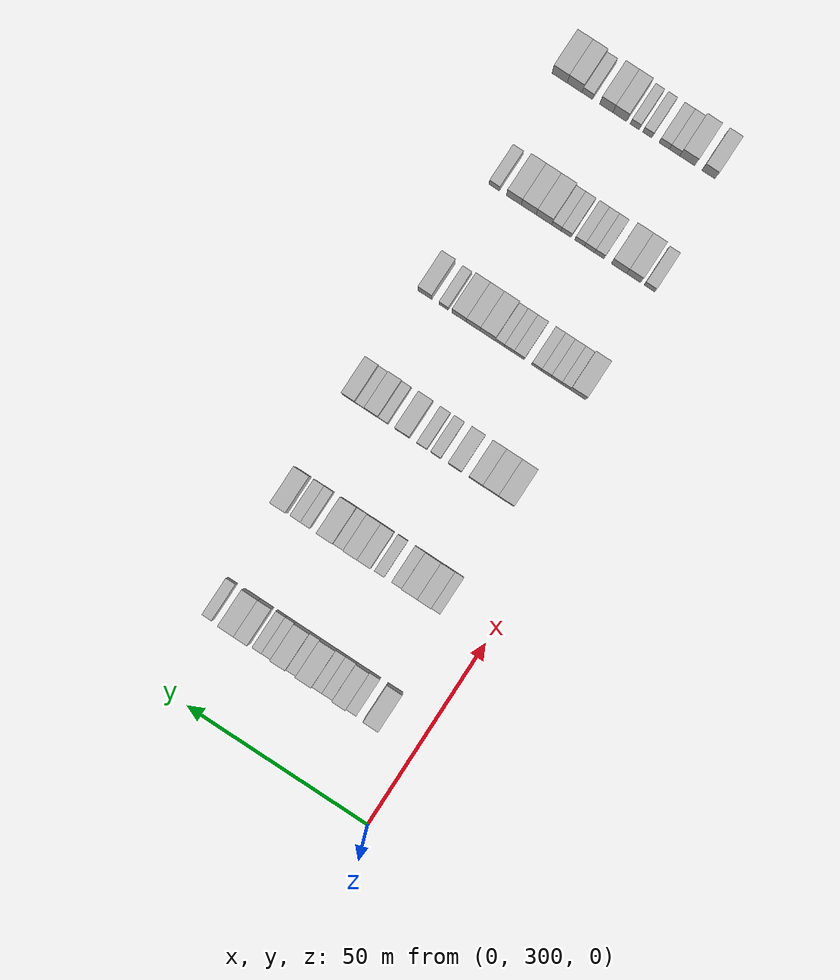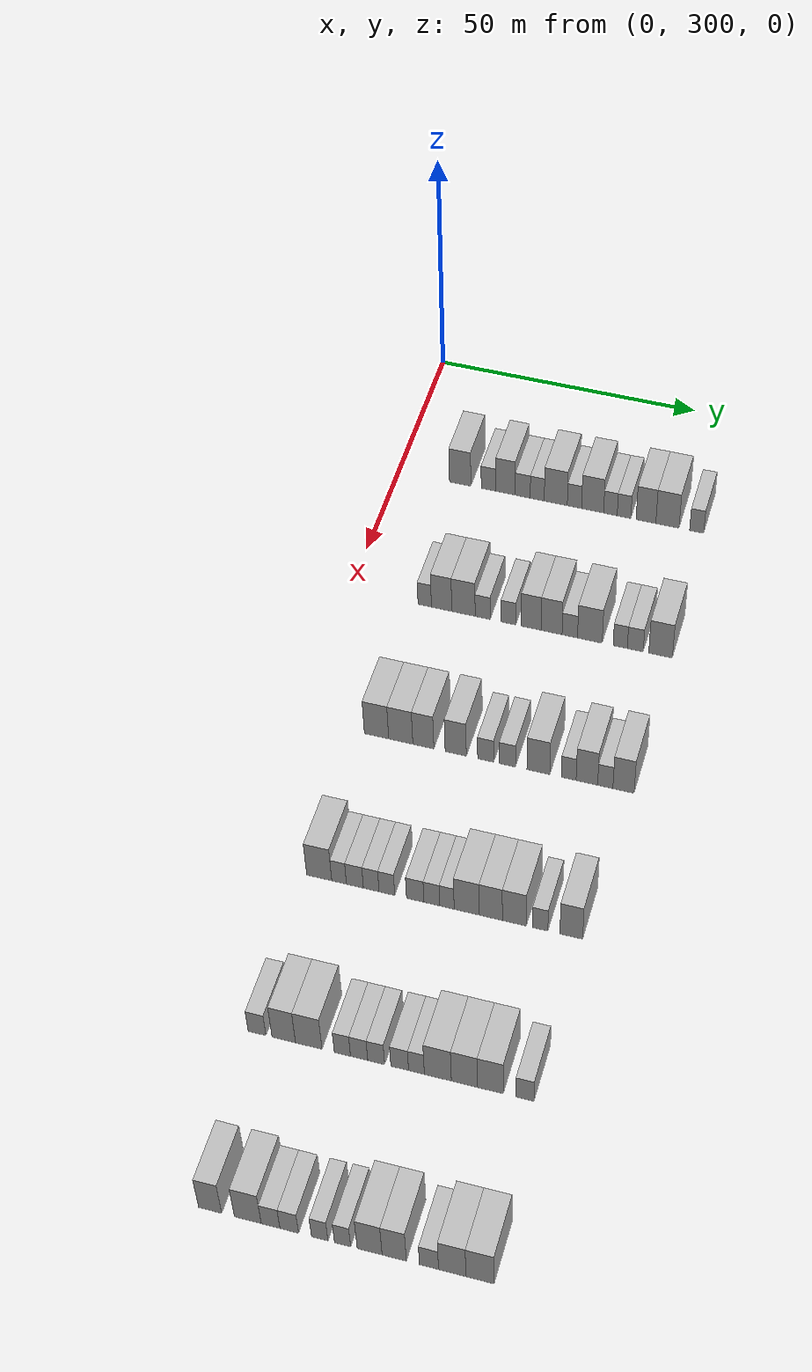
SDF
<sdf version="1.6">
 <world name="default">
  <model name="building_190">
   <static>1</static>
   <pose>25.0000 311.9257 0 0.000000 0.000000 0.000000</pose>
   <link name="link">
    <pose>0 0 4.50 0 0 0</pose>
    <collision name="collision"><geometry><box><size>10.0000 4.1539 9.0000</size></box></geometry></collision>
    <visual name="visual">
     <cast_shadows>0</cast_shadows>
     <geometry><box><size>10.0000 4.1539 9.0000</size></box></geometry>
     <material>
      <script>
       <uri>model://HANNAS_wall/materials/scripts</uri>
       <uri>model://HANNAS_wall/materials/textures</uri>
       <name>vrc/HANNAS_wall</name>
      </script>
     </material>
    </visual>
   </link>
  </model>
  <model name="building_191">
   <static>1</static>
   <pose>25.0000 317.4228 0 0.000000 0.000000 0.000000</pose>
   <link name="link">
    <pose>0 0 3.00 0 0 0</pose>
    <collision name="collision"><geometry><box><size>10.0000 2.8403 6.0000</size></box></geometry></collision>
    <visual name="visual">
     <cast_shadows>0</cast_shadows>
     <geometry><box><size>10.0000 2.8403 6.0000</size></box></geometry>
     <material>
      <script>
       <uri>model://HANNAS_wall/materials/scripts</uri>
       <uri>model://HANNAS_wall/materials/textures</uri>
       <name>vrc/HANNAS_wall</name>
      </script>
     </material>
    </visual>
   </link>
  </model>
  <model name="building_192">
   <static>1</static>
   <pose>25.0000 320.6997 0 0.000000 0.000000 0.000000</pose>
   <link name="link">
    <pose>0 0 4.50 0 0 0</pose>
    <collision name="collision"><geometry><box><size>10.0000 3.7133 9.0000</size></box></geometry></collision>
    <visual name="visual">
     <cast_shadows>0</cast_shadows>
     <geometry><box><size>10.0000 3.7133 9.0000</size></box></geometry>
     <material>
      <script>
       <uri>model://HANNAS_wall/materials/scripts</uri>
       <uri>model://HANNAS_wall/materials/textures</uri>
       <name>vrc/HANNAS_wall</name>
      </script>
     </material>
    </visual>
   </link>
  </model>
  <model name="building_193">
   <static>1</static>
   <pose>25.0000 323.9984 0 0.000000 0.000000 0.000000</pose>
   <link name="link">
    <pose>0 0 3.00 0 0 0</pose>
    <collision name="collision"><geometry><box><size>10.0000 2.8842 6.0000</size></box></geometry></collision>
    <visual name="visual">
     <cast_shadows>0</cast_shadows>
     <geometry><box><size>10.0000 2.8842 6.0000</size></box></geometry>
     <material>
      <script>
       <uri>model://HANNAS_wall/materials/scripts</uri>
       <uri>model://HANNAS_wall/materials/textures</uri>
       <name>vrc/HANNAS_wall</name>
      </script>
     </material>
    </visual>
   </link>
  </model>
  <model name="building_194">
   <static>1</static>
   <pose>25.0000 326.7811 0 0.000000 0.000000 0.000000</pose>
   <link name="link">
    <pose>0 0 3.00 0 0 0</pose>
    <collision name="collision"><geometry><box><size>10.0000 2.6811 6.0000</size></box></geometry></collision>
    <visual name="visual">
     <cast_shadows>0</cast_shadows>
     <geometry><box><size>10.0000 2.6811 6.0000</size></box></geometry>
     <material>
      <script>
       <uri>model://HANNAS_wall/materials/scripts</uri>
       <uri>model://HANNAS_wall/materials/textures</uri>
       <name>vrc/HANNAS_wall</name>
      </script>
     </material>
    </visual>
   </link>
  </model>
  <model name="building_195">
   <static>1</static>
   <pose>25.0000 330.3215 0 0.000000 0.000000 0.000000</pose>
   <link name="link">
    <pose>0 0 4.50 0 0 0</pose>
    <collision name="collision"><geometry><box><size>10.0000 4.3998 9.0000</size></box></geometry></collision>
    <visual name="visual">
     <cast_shadows>0</cast_shadows>
     <geometry><box><size>10.0000 4.3998 9.0000</size></box></geometry>
     <material>
      <script>
       <uri>model://HANNAS_wall/materials/scripts</uri>
       <uri>model://HANNAS_wall/materials/textures</uri>
       <name>vrc/HANNAS_wall</name>
      </script>
     </material>
    </visual>
   </link>
  </model>
  <model name="building_196">
   <static>1</static>
   <pose>25.0000 333.8808 0 0.000000 0.000000 0.000000</pose>
   <link name="link">
    <pose>0 0 3.00 0 0 0</pose>
    <collision name="collision"><geometry><box><size>10.0000 2.7188 6.0000</size></box></geometry></collision>
    <visual name="visual">
     <cast_shadows>0</cast_shadows>
     <geometry><box><size>10.0000 2.7188 6.0000</size></box></geometry>
     <material>
      <script>
       <uri>model://HANNAS_wall/materials/scripts</uri>
       <uri>model://HANNAS_wall/materials/textures</uri>
       <name>vrc/HANNAS_wall</name>
      </script>
     </material>
    </visual>
   </link>
  </model>
  <model name="building_197">
   <static>1</static>
   <pose>25.0000 337.3412 0 0.000000 0.000000 0.000000</pose>
   <link name="link">
    <pose>0 0 4.50 0 0 0</pose>
    <collision name="collision"><geometry><box><size>10.0000 4.2018 9.0000</size></box></geometry></collision>
    <visual name="visual">
     <cast_shadows>0</cast_shadows>
     <geometry><box><size>10.0000 4.2018 9.0000</size></box></geometry>
     <material>
      <script>
       <uri>model://HANNAS_wall/materials/scripts</uri>
       <uri>model://HANNAS_wall/materials/textures</uri>
       <name>vrc/HANNAS_wall</name>
      </script>
     </material>
    </visual>
   </link>
  </model>
  <model name="building_198">
   <static>1</static>
   <pose>25.0000 340.7309 0 0.000000 0.000000 0.000000</pose>
   <link name="link">
    <pose>0 0 3.00 0 0 0</pose>
    <collision name="collision"><geometry><box><size>10.0000 2.5776 6.0000</size></box></geometry></collision>
    <visual name="visual">
     <cast_shadows>0</cast_shadows>
     <geometry><box><size>10.0000 2.5776 6.0000</size></box></geometry>
     <material>
      <script>
       <uri>model://HANNAS_wall/materials/scripts</uri>
       <uri>model://HANNAS_wall/materials/textures</uri>
       <name>vrc/HANNAS_wall</name>
      </script>
     </material>
    </visual>
   </link>
  </model>
  <model name="building_199">
   <static>1</static>
   <pose>25.0000 343.3075 0 0.000000 0.000000 0.000000</pose>
   <link name="link">
    <pose>0 0 3.00 0 0 0</pose>
    <collision name="collision"><geometry><box><size>10.0000 2.5756 6.0000</size></box></geometry></collision>
    <visual name="visual">
     <cast_shadows>0</cast_shadows>
     <geometry><box><size>10.0000 2.5756 6.0000</size></box></geometry>
     <material>
      <script>
       <uri>model://HANNAS_wall/materials/scripts</uri>
       <uri>model://HANNAS_wall/materials/textures</uri>
       <name>vrc/HANNAS_wall</name>
      </script>
     </material>
    </visual>
   </link>
  </model>
  <model name="building_200">
   <static>1</static>
   <pose>25.0000 347.4559 0 0.000000 0.000000 0.000000</pose>
   <link name="link">
    <pose>0 0 4.50 0 0 0</pose>
    <collision name="collision"><geometry><box><size>10.0000 3.7213 9.0000</size></box></geometry></collision>
    <visual name="visual">
     <cast_shadows>0</cast_shadows>
     <geometry><box><size>10.0000 3.7213 9.0000</size></box></geometry>
     <material>
      <script>
       <uri>model://HANNAS_wall/materials/scripts</uri>
       <uri>model://HANNAS_wall/materials/textures</uri>
       <name>vrc/HANNAS_wall</name>
      </script>
     </material>
    </visual>
   </link>
  </model>
  <model name="building_201">
   <static>1</static>
   <pose>25.0000 351.5034 0 0.000000 0.000000 0.000000</pose>
   <link name="link">
    <pose>0 0 4.50 0 0 0</pose>
    <collision name="collision"><geometry><box><size>10.0000 4.3736 9.0000</size></box></geometry></collision>
    <visual name="visual">
     <cast_shadows>0</cast_shadows>
     <geometry><box><size>10.0000 4.3736 9.0000</size></box></geometry>
     <material>
      <script>
       <uri>model://HANNAS_wall/materials/scripts</uri>
       <uri>model://HANNAS_wall/materials/textures</uri>
       <name>vrc/HANNAS_wall</name>
      </script>
     </material>
    </visual>
   </link>
  </model>
  <model name="building_202">
   <static>1</static>
   <pose>25.0000 357.0104 0 0.000000 0.000000 0.000000</pose>
   <link name="link">
    <pose>0 0 3.00 0 0 0</pose>
    <collision name="collision"><geometry><box><size>10.0000 2.6405 6.0000</size></box></geometry></collision>
    <visual name="visual">
     <cast_shadows>0</cast_shadows>
     <geometry><box><size>10.0000 2.6405 6.0000</size></box></geometry>
     <material>
      <script>
       <uri>model://HANNAS_wall/materials/scripts</uri>
       <uri>model://HANNAS_wall/materials/textures</uri>
       <name>vrc/HANNAS_wall</name>
      </script>
     </material>
    </visual>
   </link>
  </model>
  <model name="building_418">
   <static>1</static>
   <pose>55.0000 313.9121 0 0.000000 0.000000 0.000000</pose>
   <link name="link">
    <pose>0 0 3.00 0 0 0</pose>
    <collision name="collision"><geometry><box><size>10.0000 2.4961 6.0000</size></box></geometry></collision>
    <visual name="visual">
     <cast_shadows>0</cast_shadows>
     <geometry><box><size>10.0000 2.4961 6.0000</size></box></geometry>
     <material>
      <script>
       <uri>model://HANNAS_wall/materials/scripts</uri>
       <uri>model://HANNAS_wall/materials/textures</uri>
       <name>vrc/HANNAS_wall</name>
      </script>
     </material>
    </visual>
   </link>
  </model>
  <model name="building_419">
   <static>1</static>
   <pose>55.0000 317.0556 0 0.000000 0.000000 0.000000</pose>
   <link name="link">
    <pose>0 0 4.50 0 0 0</pose>
    <collision name="collision"><geometry><box><size>10.0000 3.7909 9.0000</size></box></geometry></collision>
    <visual name="visual">
     <cast_shadows>0</cast_shadows>
     <geometry><box><size>10.0000 3.7909 9.0000</size></box></geometry>
     <material>
      <script>
       <uri>model://HANNAS_wall/materials/scripts</uri>
       <uri>model://HANNAS_wall/materials/textures</uri>
       <name>vrc/HANNAS_wall</name>
      </script>
     </material>
    </visual>
   </link>
  </model>
  <model name="building_420">
   <static>1</static>
   <pose>55.0000 321.1170 0 0.000000 0.000000 0.000000</pose>
   <link name="link">
    <pose>0 0 4.50 0 0 0</pose>
    <collision name="collision"><geometry><box><size>10.0000 4.3321 9.0000</size></box></geometry></collision>
    <visual name="visual">
     <cast_shadows>0</cast_shadows>
     <geometry><box><size>10.0000 4.3321 9.0000</size></box></geometry>
     <material>
      <script>
       <uri>model://HANNAS_wall/materials/scripts</uri>
       <uri>model://HANNAS_wall/materials/textures</uri>
       <name>vrc/HANNAS_wall</name>
      </script>
     </material>
    </visual>
   </link>
  </model>
  <model name="building_421">
   <static>1</static>
   <pose>55.0000 324.6702 0 0.000000 0.000000 0.000000</pose>
   <link name="link">
    <pose>0 0 3.00 0 0 0</pose>
    <collision name="collision"><geometry><box><size>10.0000 2.7742 6.0000</size></box></geometry></collision>
    <visual name="visual">
     <cast_shadows>0</cast_shadows>
     <geometry><box><size>10.0000 2.7742 6.0000</size></box></geometry>
     <material>
      <script>
       <uri>model://HANNAS_wall/materials/scripts</uri>
       <uri>model://HANNAS_wall/materials/textures</uri>
       <name>vrc/HANNAS_wall</name>
      </script>
     </material>
    </visual>
   </link>
  </model>
  <model name="building_422">
   <static>1</static>
   <pose>55.0000 329.4121 0 0.000000 0.000000 0.000000</pose>
   <link name="link">
    <pose>0 0 3.00 0 0 0</pose>
    <collision name="collision"><geometry><box><size>10.0000 2.7095 6.0000</size></box></geometry></collision>
    <visual name="visual">
     <cast_shadows>0</cast_shadows>
     <geometry><box><size>10.0000 2.7095 6.0000</size></box></geometry>
     <material>
      <script>
       <uri>model://HANNAS_wall/materials/scripts</uri>
       <uri>model://HANNAS_wall/materials/textures</uri>
       <name>vrc/HANNAS_wall</name>
      </script>
     </material>
    </visual>
   </link>
  </model>
  <model name="building_423">
   <static>1</static>
   <pose>55.0000 333.5823 0 0.000000 0.000000 0.000000</pose>
   <link name="link">
    <pose>0 0 4.50 0 0 0</pose>
    <collision name="collision"><geometry><box><size>10.0000 3.6309 9.0000</size></box></geometry></collision>
    <visual name="visual">
     <cast_shadows>0</cast_shadows>
     <geometry><box><size>10.0000 3.6309 9.0000</size></box></geometry>
     <material>
      <script>
       <uri>model://HANNAS_wall/materials/scripts</uri>
       <uri>model://HANNAS_wall/materials/textures</uri>
       <name>vrc/HANNAS_wall</name>
      </script>
     </material>
    </visual>
   </link>
  </model>
  <model name="building_424">
   <static>1</static>
   <pose>55.0000 337.3240 0 0.000000 0.000000 0.000000</pose>
   <link name="link">
    <pose>0 0 4.50 0 0 0</pose>
    <collision name="collision"><geometry><box><size>10.0000 3.8527 9.0000</size></box></geometry></collision>
    <visual name="visual">
     <cast_shadows>0</cast_shadows>
     <geometry><box><size>10.0000 3.8527 9.0000</size></box></geometry>
     <material>
      <script>
       <uri>model://HANNAS_wall/materials/scripts</uri>
       <uri>model://HANNAS_wall/materials/textures</uri>
       <name>vrc/HANNAS_wall</name>
      </script>
     </material>
    </visual>
   </link>
  </model>
  <model name="building_425">
   <static>1</static>
   <pose>55.0000 340.6589 0 0.000000 0.000000 0.000000</pose>
   <link name="link">
    <pose>0 0 3.00 0 0 0</pose>
    <collision name="collision"><geometry><box><size>10.0000 2.8171 6.0000</size></box></geometry></collision>
    <visual name="visual">
     <cast_shadows>0</cast_shadows>
     <geometry><box><size>10.0000 2.8171 6.0000</size></box></geometry>
     <material>
      <script>
       <uri>model://HANNAS_wall/materials/scripts</uri>
       <uri>model://HANNAS_wall/materials/textures</uri>
       <name>vrc/HANNAS_wall</name>
      </script>
     </material>
    </visual>
   </link>
  </model>
  <model name="building_426">
   <static>1</static>
   <pose>55.0000 344.3083 0 0.000000 0.000000 0.000000</pose>
   <link name="link">
    <pose>0 0 4.50 0 0 0</pose>
    <collision name="collision"><geometry><box><size>10.0000 4.4817 9.0000</size></box></geometry></collision>
    <visual name="visual">
     <cast_shadows>0</cast_shadows>
     <geometry><box><size>10.0000 4.4817 9.0000</size></box></geometry>
     <material>
      <script>
       <uri>model://HANNAS_wall/materials/scripts</uri>
       <uri>model://HANNAS_wall/materials/textures</uri>
       <name>vrc/HANNAS_wall</name>
      </script>
     </material>
    </visual>
   </link>
  </model>
  <model name="building_427">
   <static>1</static>
   <pose>55.0000 349.8265 0 0.000000 0.000000 0.000000</pose>
   <link name="link">
    <pose>0 0 3.00 0 0 0</pose>
    <collision name="collision"><geometry><box><size>10.0000 2.5547 6.0000</size></box></geometry></collision>
    <visual name="visual">
     <cast_shadows>0</cast_shadows>
     <geometry><box><size>10.0000 2.5547 6.0000</size></box></geometry>
     <material>
      <script>
       <uri>model://HANNAS_wall/materials/scripts</uri>
       <uri>model://HANNAS_wall/materials/textures</uri>
       <name>vrc/HANNAS_wall</name>
      </script>
     </material>
    </visual>
   </link>
  </model>
  <model name="building_428">
   <static>1</static>
   <pose>55.0000 352.5452 0 0.000000 0.000000 0.000000</pose>
   <link name="link">
    <pose>0 0 3.00 0 0 0</pose>
    <collision name="collision"><geometry><box><size>10.0000 2.8827 6.0000</size></box></geometry></collision>
    <visual name="visual">
     <cast_shadows>0</cast_shadows>
     <geometry><box><size>10.0000 2.8827 6.0000</size></box></geometry>
     <material>
      <script>
       <uri>model://HANNAS_wall/materials/scripts</uri>
       <uri>model://HANNAS_wall/materials/textures</uri>
       <name>vrc/HANNAS_wall</name>
      </script>
     </material>
    </visual>
   </link>
  </model>
  <model name="building_429">
   <static>1</static>
   <pose>55.0000 357.1132 0 0.000000 0.000000 0.000000</pose>
   <link name="link">
    <pose>0 0 4.50 0 0 0</pose>
    <collision name="collision"><geometry><box><size>10.0000 4.2534 9.0000</size></box></geometry></collision>
    <visual name="visual">
     <cast_shadows>0</cast_shadows>
     <geometry><box><size>10.0000 4.2534 9.0000</size></box></geometry>
     <material>
      <script>
       <uri>model://HANNAS_wall/materials/scripts</uri>
       <uri>model://HANNAS_wall/materials/textures</uri>
       <name>vrc/HANNAS_wall</name>
      </script>
     </material>
    </visual>
   </link>
  </model>
  <model name="building_637">
   <static>1</static>
   <pose>85.0000 314.1983 0 0.000000 0.000000 0.000000</pose>
   <link name="link">
    <pose>0 0 4.50 0 0 0</pose>
    <collision name="collision"><geometry><box><size>10.0000 4.3485 9.0000</size></box></geometry></collision>
    <visual name="visual">
     <cast_shadows>0</cast_shadows>
     <geometry><box><size>10.0000 4.3485 9.0000</size></box></geometry>
     <material>
      <script>
       <uri>model://HANNAS_wall/materials/scripts</uri>
       <uri>model://HANNAS_wall/materials/textures</uri>
       <name>vrc/HANNAS_wall</name>
      </script>
     </material>
    </visual>
   </link>
  </model>
  <model name="building_638">
   <static>1</static>
   <pose>85.0000 318.5259 0 0.000000 0.000000 0.000000</pose>
   <link name="link">
    <pose>0 0 4.50 0 0 0</pose>
    <collision name="collision"><geometry><box><size>10.0000 4.3066 9.0000</size></box></geometry></collision>
    <visual name="visual">
     <cast_shadows>0</cast_shadows>
     <geometry><box><size>10.0000 4.3066 9.0000</size></box></geometry>
     <material>
      <script>
       <uri>model://HANNAS_wall/materials/scripts</uri>
       <uri>model://HANNAS_wall/materials/textures</uri>
       <name>vrc/HANNAS_wall</name>
      </script>
     </material>
    </visual>
   </link>
  </model>
  <model name="building_639">
   <static>1</static>
   <pose>85.0000 322.5533 0 0.000000 0.000000 0.000000</pose>
   <link name="link">
    <pose>0 0 4.50 0 0 0</pose>
    <collision name="collision"><geometry><box><size>10.0000 3.7481 9.0000</size></box></geometry></collision>
    <visual name="visual">
     <cast_shadows>0</cast_shadows>
     <geometry><box><size>10.0000 3.7481 9.0000</size></box></geometry>
     <material>
      <script>
       <uri>model://HANNAS_wall/materials/scripts</uri>
       <uri>model://HANNAS_wall/materials/textures</uri>
       <name>vrc/HANNAS_wall</name>
      </script>
     </material>
    </visual>
   </link>
  </model>
  <model name="building_640">
   <static>1</static>
   <pose>85.0000 328.3026 0 0.000000 0.000000 0.000000</pose>
   <link name="link">
    <pose>0 0 4.50 0 0 0</pose>
    <collision name="collision"><geometry><box><size>10.0000 3.7507 9.0000</size></box></geometry></collision>
    <visual name="visual">
     <cast_shadows>0</cast_shadows>
     <geometry><box><size>10.0000 3.7507 9.0000</size></box></geometry>
     <material>
      <script>
       <uri>model://HANNAS_wall/materials/scripts</uri>
       <uri>model://HANNAS_wall/materials/textures</uri>
       <name>vrc/HANNAS_wall</name>
      </script>
     </material>
    </visual>
   </link>
  </model>
  <model name="building_641">
   <static>1</static>
   <pose>85.0000 333.5868 0 0.000000 0.000000 0.000000</pose>
   <link name="link">
    <pose>0 0 3.00 0 0 0</pose>
    <collision name="collision"><geometry><box><size>10.0000 2.8176 6.0000</size></box></geometry></collision>
    <visual name="visual">
     <cast_shadows>0</cast_shadows>
     <geometry><box><size>10.0000 2.8176 6.0000</size></box></geometry>
     <material>
      <script>
       <uri>model://HANNAS_wall/materials/scripts</uri>
       <uri>model://HANNAS_wall/materials/textures</uri>
       <name>vrc/HANNAS_wall</name>
      </script>
     </material>
    </visual>
   </link>
  </model>
  <model name="building_642">
   <static>1</static>
   <pose>85.0000 337.4117 0 0.000000 0.000000 0.000000</pose>
   <link name="link">
    <pose>0 0 3.00 0 0 0</pose>
    <collision name="collision"><geometry><box><size>10.0000 2.8322 6.0000</size></box></geometry></collision>
    <visual name="visual">
     <cast_shadows>0</cast_shadows>
     <geometry><box><size>10.0000 2.8322 6.0000</size></box></geometry>
     <material>
      <script>
       <uri>model://HANNAS_wall/materials/scripts</uri>
       <uri>model://HANNAS_wall/materials/textures</uri>
       <name>vrc/HANNAS_wall</name>
      </script>
     </material>
    </visual>
   </link>
  </model>
  <model name="building_643">
   <static>1</static>
   <pose>85.0000 342.8306 0 0.000000 0.000000 0.000000</pose>
   <link name="link">
    <pose>0 0 4.50 0 0 0</pose>
    <collision name="collision"><geometry><box><size>10.0000 4.0057 9.0000</size></box></geometry></collision>
    <visual name="visual">
     <cast_shadows>0</cast_shadows>
     <geometry><box><size>10.0000 4.0057 9.0000</size></box></geometry>
     <material>
      <script>
       <uri>model://HANNAS_wall/materials/scripts</uri>
       <uri>model://HANNAS_wall/materials/textures</uri>
       <name>vrc/HANNAS_wall</name>
      </script>
     </material>
    </visual>
   </link>
  </model>
  <model name="building_644">
   <static>1</static>
   <pose>85.0000 348.1240 0 0.000000 0.000000 0.000000</pose>
   <link name="link">
    <pose>0 0 3.00 0 0 0</pose>
    <collision name="collision"><geometry><box><size>10.0000 2.5811 6.0000</size></box></geometry></collision>
    <visual name="visual">
     <cast_shadows>0</cast_shadows>
     <geometry><box><size>10.0000 2.5811 6.0000</size></box></geometry>
     <material>
      <script>
       <uri>model://HANNAS_wall/materials/scripts</uri>
       <uri>model://HANNAS_wall/materials/textures</uri>
       <name>vrc/HANNAS_wall</name>
      </script>
     </material>
    </visual>
   </link>
  </model>
  <model name="building_645">
   <static>1</static>
   <pose>85.0000 351.2854 0 0.000000 0.000000 0.000000</pose>
   <link name="link">
    <pose>0 0 4.50 0 0 0</pose>
    <collision name="collision"><geometry><box><size>10.0000 3.7417 9.0000</size></box></geometry></collision>
    <visual name="visual">
     <cast_shadows>0</cast_shadows>
     <geometry><box><size>10.0000 3.7417 9.0000</size></box></geometry>
     <material>
      <script>
       <uri>model://HANNAS_wall/materials/scripts</uri>
       <uri>model://HANNAS_wall/materials/textures</uri>
       <name>vrc/HANNAS_wall</name>
      </script>
     </material>
    </visual>
   </link>
  </model>
  <model name="building_646">
   <static>1</static>
   <pose>85.0000 354.4771 0 0.000000 0.000000 0.000000</pose>
   <link name="link">
    <pose>0 0 3.00 0 0 0</pose>
    <collision name="collision"><geometry><box><size>10.0000 2.6416 6.0000</size></box></geometry></collision>
    <visual name="visual">
     <cast_shadows>0</cast_shadows>
     <geometry><box><size>10.0000 2.6416 6.0000</size></box></geometry>
     <material>
      <script>
       <uri>model://HANNAS_wall/materials/scripts</uri>
       <uri>model://HANNAS_wall/materials/textures</uri>
       <name>vrc/HANNAS_wall</name>
      </script>
     </material>
    </visual>
   </link>
  </model>
  <model name="building_647">
   <static>1</static>
   <pose>85.0000 357.6308 0 0.000000 0.000000 0.000000</pose>
   <link name="link">
    <pose>0 0 4.50 0 0 0</pose>
    <collision name="collision"><geometry><box><size>10.0000 3.6657 9.0000</size></box></geometry></collision>
    <visual name="visual">
     <cast_shadows>0</cast_shadows>
     <geometry><box><size>10.0000 3.6657 9.0000</size></box></geometry>
     <material>
      <script>
       <uri>model://HANNAS_wall/materials/scripts</uri>
       <uri>model://HANNAS_wall/materials/textures</uri>
       <name>vrc/HANNAS_wall</name>
      </script>
     </material>
    </visual>
   </link>
  </model>
  <model name="building_873">
   <static>1</static>
   <pose>115.0000 313.6905 0 0.000000 0.000000 0.000000</pose>
   <link name="link">
    <pose>0 0 4.50 0 0 0</pose>
    <collision name="collision"><geometry><box><size>10.0000 4.3022 9.0000</size></box></geometry></collision>
    <visual name="visual">
     <cast_shadows>0</cast_shadows>
     <geometry><box><size>10.0000 4.3022 9.0000</size></box></geometry>
     <material>
      <script>
       <uri>model://HANNAS_wall/materials/scripts</uri>
       <uri>model://HANNAS_wall/materials/textures</uri>
       <name>vrc/HANNAS_wall</name>
      </script>
     </material>
    </visual>
   </link>
  </model>
  <model name="building_874">
   <static>1</static>
   <pose>115.0000 317.0997 0 0.000000 0.000000 0.000000</pose>
   <link name="link">
    <pose>0 0 3.00 0 0 0</pose>
    <collision name="collision"><geometry><box><size>10.0000 2.5161 6.0000</size></box></geometry></collision>
    <visual name="visual">
     <cast_shadows>0</cast_shadows>
     <geometry><box><size>10.0000 2.5161 6.0000</size></box></geometry>
     <material>
      <script>
       <uri>model://HANNAS_wall/materials/scripts</uri>
       <uri>model://HANNAS_wall/materials/textures</uri>
       <name>vrc/HANNAS_wall</name>
      </script>
     </material>
    </visual>
   </link>
  </model>
  <model name="building_875">
   <static>1</static>
   <pose>115.0000 319.8064 0 0.000000 0.000000 0.000000</pose>
   <link name="link">
    <pose>0 0 3.00 0 0 0</pose>
    <collision name="collision"><geometry><box><size>10.0000 2.8975 6.0000</size></box></geometry></collision>
    <visual name="visual">
     <cast_shadows>0</cast_shadows>
     <geometry><box><size>10.0000 2.8975 6.0000</size></box></geometry>
     <material>
      <script>
       <uri>model://HANNAS_wall/materials/scripts</uri>
       <uri>model://HANNAS_wall/materials/textures</uri>
       <name>vrc/HANNAS_wall</name>
      </script>
     </material>
    </visual>
   </link>
  </model>
  <model name="building_876">
   <static>1</static>
   <pose>115.0000 322.5902 0 0.000000 0.000000 0.000000</pose>
   <link name="link">
    <pose>0 0 3.00 0 0 0</pose>
    <collision name="collision"><geometry><box><size>10.0000 2.6700 6.0000</size></box></geometry></collision>
    <visual name="visual">
     <cast_shadows>0</cast_shadows>
     <geometry><box><size>10.0000 2.6700 6.0000</size></box></geometry>
     <material>
      <script>
       <uri>model://HANNAS_wall/materials/scripts</uri>
       <uri>model://HANNAS_wall/materials/textures</uri>
       <name>vrc/HANNAS_wall</name>
      </script>
     </material>
    </visual>
   </link>
  </model>
  <model name="building_877">
   <static>1</static>
   <pose>115.0000 325.2621 0 0.000000 0.000000 0.000000</pose>
   <link name="link">
    <pose>0 0 3.00 0 0 0</pose>
    <collision name="collision"><geometry><box><size>10.0000 2.6739 6.0000</size></box></geometry></collision>
    <visual name="visual">
     <cast_shadows>0</cast_shadows>
     <geometry><box><size>10.0000 2.6739 6.0000</size></box></geometry>
     <material>
      <script>
       <uri>model://HANNAS_wall/materials/scripts</uri>
       <uri>model://HANNAS_wall/materials/textures</uri>
       <name>vrc/HANNAS_wall</name>
      </script>
     </material>
    </visual>
   </link>
  </model>
  <model name="building_878">
   <static>1</static>
   <pose>115.0000 330.0762 0 0.000000 0.000000 0.000000</pose>
   <link name="link">
    <pose>0 0 3.00 0 0 0</pose>
    <collision name="collision"><geometry><box><size>10.0000 2.9543 6.0000</size></box></geometry></collision>
    <visual name="visual">
     <cast_shadows>0</cast_shadows>
     <geometry><box><size>10.0000 2.9543 6.0000</size></box></geometry>
     <material>
      <script>
       <uri>model://HANNAS_wall/materials/scripts</uri>
       <uri>model://HANNAS_wall/materials/textures</uri>
       <name>vrc/HANNAS_wall</name>
      </script>
     </material>
    </visual>
   </link>
  </model>
  <model name="building_879">
   <static>1</static>
   <pose>115.0000 332.8945 0 0.000000 0.000000 0.000000</pose>
   <link name="link">
    <pose>0 0 3.00 0 0 0</pose>
    <collision name="collision"><geometry><box><size>10.0000 2.6823 6.0000</size></box></geometry></collision>
    <visual name="visual">
     <cast_shadows>0</cast_shadows>
     <geometry><box><size>10.0000 2.6823 6.0000</size></box></geometry>
     <material>
      <script>
       <uri>model://HANNAS_wall/materials/scripts</uri>
       <uri>model://HANNAS_wall/materials/textures</uri>
       <name>vrc/HANNAS_wall</name>
      </script>
     </material>
    </visual>
   </link>
  </model>
  <model name="building_880">
   <static>1</static>
   <pose>115.0000 335.4438 0 0.000000 0.000000 0.000000</pose>
   <link name="link">
    <pose>0 0 3.00 0 0 0</pose>
    <collision name="collision"><geometry><box><size>10.0000 2.4163 6.0000</size></box></geometry></collision>
    <visual name="visual">
     <cast_shadows>0</cast_shadows>
     <geometry><box><size>10.0000 2.4163 6.0000</size></box></geometry>
     <material>
      <script>
       <uri>model://HANNAS_wall/materials/scripts</uri>
       <uri>model://HANNAS_wall/materials/textures</uri>
       <name>vrc/HANNAS_wall</name>
      </script>
     </material>
    </visual>
   </link>
  </model>
  <model name="building_881">
   <static>1</static>
   <pose>115.0000 338.7715 0 0.000000 0.000000 0.000000</pose>
   <link name="link">
    <pose>0 0 4.50 0 0 0</pose>
    <collision name="collision"><geometry><box><size>10.0000 4.2391 9.0000</size></box></geometry></collision>
    <visual name="visual">
     <cast_shadows>0</cast_shadows>
     <geometry><box><size>10.0000 4.2391 9.0000</size></box></geometry>
     <material>
      <script>
       <uri>model://HANNAS_wall/materials/scripts</uri>
       <uri>model://HANNAS_wall/materials/textures</uri>
       <name>vrc/HANNAS_wall</name>
      </script>
     </material>
    </visual>
   </link>
  </model>
  <model name="building_882">
   <static>1</static>
   <pose>115.0000 342.8144 0 0.000000 0.000000 0.000000</pose>
   <link name="link">
    <pose>0 0 4.50 0 0 0</pose>
    <collision name="collision"><geometry><box><size>10.0000 3.8466 9.0000</size></box></geometry></collision>
    <visual name="visual">
     <cast_shadows>0</cast_shadows>
     <geometry><box><size>10.0000 3.8466 9.0000</size></box></geometry>
     <material>
      <script>
       <uri>model://HANNAS_wall/materials/scripts</uri>
       <uri>model://HANNAS_wall/materials/textures</uri>
       <name>vrc/HANNAS_wall</name>
      </script>
     </material>
    </visual>
   </link>
  </model>
  <model name="building_883">
   <static>1</static>
   <pose>115.0000 346.7401 0 0.000000 0.000000 0.000000</pose>
   <link name="link">
    <pose>0 0 4.50 0 0 0</pose>
    <collision name="collision"><geometry><box><size>10.0000 4.0049 9.0000</size></box></geometry></collision>
    <visual name="visual">
     <cast_shadows>0</cast_shadows>
     <geometry><box><size>10.0000 4.0049 9.0000</size></box></geometry>
     <material>
      <script>
       <uri>model://HANNAS_wall/materials/scripts</uri>
       <uri>model://HANNAS_wall/materials/textures</uri>
       <name>vrc/HANNAS_wall</name>
      </script>
     </material>
    </visual>
   </link>
  </model>
  <model name="building_884">
   <static>1</static>
   <pose>115.0000 351.0376 0 0.000000 0.000000 0.000000</pose>
   <link name="link">
    <pose>0 0 3.00 0 0 0</pose>
    <collision name="collision"><geometry><box><size>10.0000 2.5901 6.0000</size></box></geometry></collision>
    <visual name="visual">
     <cast_shadows>0</cast_shadows>
     <geometry><box><size>10.0000 2.5901 6.0000</size></box></geometry>
     <material>
      <script>
       <uri>model://HANNAS_wall/materials/scripts</uri>
       <uri>model://HANNAS_wall/materials/textures</uri>
       <name>vrc/HANNAS_wall</name>
      </script>
     </material>
    </visual>
   </link>
  </model>
  <model name="building_885">
   <static>1</static>
   <pose>115.0000 356.2184 0 0.000000 0.000000 0.000000</pose>
   <link name="link">
    <pose>0 0 4.50 0 0 0</pose>
    <collision name="collision"><geometry><box><size>10.0000 3.7714 9.0000</size></box></geometry></collision>
    <visual name="visual">
     <cast_shadows>0</cast_shadows>
     <geometry><box><size>10.0000 3.7714 9.0000</size></box></geometry>
     <material>
      <script>
       <uri>model://HANNAS_wall/materials/scripts</uri>
       <uri>model://HANNAS_wall/materials/textures</uri>
       <name>vrc/HANNAS_wall</name>
      </script>
     </material>
    </visual>
   </link>
  </model>
  <model name="building_1100">
   <static>1</static>
   <pose>145.0000 313.2971 0 0.000000 0.000000 0.000000</pose>
   <link name="link">
    <pose>0 0 3.00 0 0 0</pose>
    <collision name="collision"><geometry><box><size>10.0000 2.9158 6.0000</size></box></geometry></collision>
    <visual name="visual">
     <cast_shadows>0</cast_shadows>
     <geometry><box><size>10.0000 2.9158 6.0000</size></box></geometry>
     <material>
      <script>
       <uri>model://HANNAS_wall/materials/scripts</uri>
       <uri>model://HANNAS_wall/materials/textures</uri>
       <name>vrc/HANNAS_wall</name>
      </script>
     </material>
    </visual>
   </link>
  </model>
  <model name="building_1101">
   <static>1</static>
   <pose>145.0000 317.6833 0 0.000000 0.000000 0.000000</pose>
   <link name="link">
    <pose>0 0 4.50 0 0 0</pose>
    <collision name="collision"><geometry><box><size>10.0000 3.8565 9.0000</size></box></geometry></collision>
    <visual name="visual">
     <cast_shadows>0</cast_shadows>
     <geometry><box><size>10.0000 3.8565 9.0000</size></box></geometry>
     <material>
      <script>
       <uri>model://HANNAS_wall/materials/scripts</uri>
       <uri>model://HANNAS_wall/materials/textures</uri>
       <name>vrc/HANNAS_wall</name>
      </script>
     </material>
    </visual>
   </link>
  </model>
  <model name="building_1102">
   <static>1</static>
   <pose>145.0000 321.7779 0 0.000000 0.000000 0.000000</pose>
   <link name="link">
    <pose>0 0 4.50 0 0 0</pose>
    <collision name="collision"><geometry><box><size>10.0000 4.3328 9.0000</size></box></geometry></collision>
    <visual name="visual">
     <cast_shadows>0</cast_shadows>
     <geometry><box><size>10.0000 4.3328 9.0000</size></box></geometry>
     <material>
      <script>
       <uri>model://HANNAS_wall/materials/scripts</uri>
       <uri>model://HANNAS_wall/materials/textures</uri>
       <name>vrc/HANNAS_wall</name>
      </script>
     </material>
    </visual>
   </link>
  </model>
  <model name="building_1103">
   <static>1</static>
   <pose>145.0000 327.2586 0 0.000000 0.000000 0.000000</pose>
   <link name="link">
    <pose>0 0 3.00 0 0 0</pose>
    <collision name="collision"><geometry><box><size>10.0000 2.6285 6.0000</size></box></geometry></collision>
    <visual name="visual">
     <cast_shadows>0</cast_shadows>
     <geometry><box><size>10.0000 2.6285 6.0000</size></box></geometry>
     <material>
      <script>
       <uri>model://HANNAS_wall/materials/scripts</uri>
       <uri>model://HANNAS_wall/materials/textures</uri>
       <name>vrc/HANNAS_wall</name>
      </script>
     </material>
    </visual>
   </link>
  </model>
  <model name="building_1104">
   <static>1</static>
   <pose>145.0000 329.9731 0 0.000000 0.000000 0.000000</pose>
   <link name="link">
    <pose>0 0 3.00 0 0 0</pose>
    <collision name="collision"><geometry><box><size>10.0000 2.8006 6.0000</size></box></geometry></collision>
    <visual name="visual">
     <cast_shadows>0</cast_shadows>
     <geometry><box><size>10.0000 2.8006 6.0000</size></box></geometry>
     <material>
      <script>
       <uri>model://HANNAS_wall/materials/scripts</uri>
       <uri>model://HANNAS_wall/materials/textures</uri>
       <name>vrc/HANNAS_wall</name>
      </script>
     </material>
    </visual>
   </link>
  </model>
  <model name="building_1105">
   <static>1</static>
   <pose>145.0000 332.7409 0 0.000000 0.000000 0.000000</pose>
   <link name="link">
    <pose>0 0 3.00 0 0 0</pose>
    <collision name="collision"><geometry><box><size>10.0000 2.7349 6.0000</size></box></geometry></collision>
    <visual name="visual">
     <cast_shadows>0</cast_shadows>
     <geometry><box><size>10.0000 2.7349 6.0000</size></box></geometry>
     <material>
      <script>
       <uri>model://HANNAS_wall/materials/scripts</uri>
       <uri>model://HANNAS_wall/materials/textures</uri>
       <name>vrc/HANNAS_wall</name>
      </script>
     </material>
    </visual>
   </link>
  </model>
  <model name="building_1106">
   <static>1</static>
   <pose>145.0000 336.5366 0 0.000000 0.000000 0.000000</pose>
   <link name="link">
    <pose>0 0 3.00 0 0 0</pose>
    <collision name="collision"><geometry><box><size>10.0000 2.8565 6.0000</size></box></geometry></collision>
    <visual name="visual">
     <cast_shadows>0</cast_shadows>
     <geometry><box><size>10.0000 2.8565 6.0000</size></box></geometry>
     <material>
      <script>
       <uri>model://HANNAS_wall/materials/scripts</uri>
       <uri>model://HANNAS_wall/materials/textures</uri>
       <name>vrc/HANNAS_wall</name>
      </script>
     </material>
    </visual>
   </link>
  </model>
  <model name="building_1107">
   <static>1</static>
   <pose>145.0000 339.2368 0 0.000000 0.000000 0.000000</pose>
   <link name="link">
    <pose>0 0 3.00 0 0 0</pose>
    <collision name="collision"><geometry><box><size>10.0000 2.5438 6.0000</size></box></geometry></collision>
    <visual name="visual">
     <cast_shadows>0</cast_shadows>
     <geometry><box><size>10.0000 2.5438 6.0000</size></box></geometry>
     <material>
      <script>
       <uri>model://HANNAS_wall/materials/scripts</uri>
       <uri>model://HANNAS_wall/materials/textures</uri>
       <name>vrc/HANNAS_wall</name>
      </script>
     </material>
    </visual>
   </link>
  </model>
  <model name="building_1108">
   <static>1</static>
   <pose>145.0000 342.6720 0 0.000000 0.000000 0.000000</pose>
   <link name="link">
    <pose>0 0 4.50 0 0 0</pose>
    <collision name="collision"><geometry><box><size>10.0000 4.3265 9.0000</size></box></geometry></collision>
    <visual name="visual">
     <cast_shadows>0</cast_shadows>
     <geometry><box><size>10.0000 4.3265 9.0000</size></box></geometry>
     <material>
      <script>
       <uri>model://HANNAS_wall/materials/scripts</uri>
       <uri>model://HANNAS_wall/materials/textures</uri>
       <name>vrc/HANNAS_wall</name>
      </script>
     </material>
    </visual>
   </link>
  </model>
  <model name="building_1109">
   <static>1</static>
   <pose>145.0000 346.9207 0 0.000000 0.000000 0.000000</pose>
   <link name="link">
    <pose>0 0 4.50 0 0 0</pose>
    <collision name="collision"><geometry><box><size>10.0000 4.1709 9.0000</size></box></geometry></collision>
    <visual name="visual">
     <cast_shadows>0</cast_shadows>
     <geometry><box><size>10.0000 4.1709 9.0000</size></box></geometry>
     <material>
      <script>
       <uri>model://HANNAS_wall/materials/scripts</uri>
       <uri>model://HANNAS_wall/materials/textures</uri>
       <name>vrc/HANNAS_wall</name>
      </script>
     </material>
    </visual>
   </link>
  </model>
  <model name="building_1110">
   <static>1</static>
   <pose>145.0000 351.0597 0 0.000000 0.000000 0.000000</pose>
   <link name="link">
    <pose>0 0 4.50 0 0 0</pose>
    <collision name="collision"><geometry><box><size>10.0000 4.1072 9.0000</size></box></geometry></collision>
    <visual name="visual">
     <cast_shadows>0</cast_shadows>
     <geometry><box><size>10.0000 4.1072 9.0000</size></box></geometry>
     <material>
      <script>
       <uri>model://HANNAS_wall/materials/scripts</uri>
       <uri>model://HANNAS_wall/materials/textures</uri>
       <name>vrc/HANNAS_wall</name>
      </script>
     </material>
    </visual>
   </link>
  </model>
  <model name="building_1111">
   <static>1</static>
   <pose>145.0000 356.5490 0 0.000000 0.000000 0.000000</pose>
   <link name="link">
    <pose>0 0 3.00 0 0 0</pose>
    <collision name="collision"><geometry><box><size>10.0000 2.8713 6.0000</size></box></geometry></collision>
    <visual name="visual">
     <cast_shadows>0</cast_shadows>
     <geometry><box><size>10.0000 2.8713 6.0000</size></box></geometry>
     <material>
      <script>
       <uri>model://HANNAS_wall/materials/scripts</uri>
       <uri>model://HANNAS_wall/materials/textures</uri>
       <name>vrc/HANNAS_wall</name>
      </script>
     </material>
    </visual>
   </link>
  </model>
  <model name="building_1326">
   <static>1</static>
   <pose>175.0000 316.3067 0 0.000000 0.000000 0.000000</pose>
   <link name="link">
    <pose>0 0 4.50 0 0 0</pose>
    <collision name="collision"><geometry><box><size>10.0000 3.6173 9.0000</size></box></geometry></collision>
    <visual name="visual">
     <cast_shadows>0</cast_shadows>
     <geometry><box><size>10.0000 3.6173 9.0000</size></box></geometry>
     <material>
      <script>
       <uri>model://HANNAS_wall/materials/scripts</uri>
       <uri>model://HANNAS_wall/materials/textures</uri>
       <name>vrc/HANNAS_wall</name>
      </script>
     </material>
    </visual>
   </link>
  </model>
  <model name="building_1327">
   <static>1</static>
   <pose>175.0000 322.2079 0 0.000000 0.000000 0.000000</pose>
   <link name="link">
    <pose>0 0 4.50 0 0 0</pose>
    <collision name="collision"><geometry><box><size>10.0000 4.1851 9.0000</size></box></geometry></collision>
    <visual name="visual">
     <cast_shadows>0</cast_shadows>
     <geometry><box><size>10.0000 4.1851 9.0000</size></box></geometry>
     <material>
      <script>
       <uri>model://HANNAS_wall/materials/scripts</uri>
       <uri>model://HANNAS_wall/materials/textures</uri>
       <name>vrc/HANNAS_wall</name>
      </script>
     </material>
    </visual>
   </link>
  </model>
  <model name="building_1328">
   <static>1</static>
   <pose>175.0000 325.7485 0 0.000000 0.000000 0.000000</pose>
   <link name="link">
    <pose>0 0 3.00 0 0 0</pose>
    <collision name="collision"><geometry><box><size>10.0000 2.8962 6.0000</size></box></geometry></collision>
    <visual name="visual">
     <cast_shadows>0</cast_shadows>
     <geometry><box><size>10.0000 2.8962 6.0000</size></box></geometry>
     <material>
      <script>
       <uri>model://HANNAS_wall/materials/scripts</uri>
       <uri>model://HANNAS_wall/materials/textures</uri>
       <name>vrc/HANNAS_wall</name>
      </script>
     </material>
    </visual>
   </link>
  </model>
  <model name="building_1329">
   <static>1</static>
   <pose>175.0000 328.6434 0 0.000000 0.000000 0.000000</pose>
   <link name="link">
    <pose>0 0 3.00 0 0 0</pose>
    <collision name="collision"><geometry><box><size>10.0000 2.8935 6.0000</size></box></geometry></collision>
    <visual name="visual">
     <cast_shadows>0</cast_shadows>
     <geometry><box><size>10.0000 2.8935 6.0000</size></box></geometry>
     <material>
      <script>
       <uri>model://HANNAS_wall/materials/scripts</uri>
       <uri>model://HANNAS_wall/materials/textures</uri>
       <name>vrc/HANNAS_wall</name>
      </script>
     </material>
    </visual>
   </link>
  </model>
  <model name="building_1330">
   <static>1</static>
   <pose>175.0000 333.3620 0 0.000000 0.000000 0.000000</pose>
   <link name="link">
    <pose>0 0 3.00 0 0 0</pose>
    <collision name="collision"><geometry><box><size>10.0000 2.5438 6.0000</size></box></geometry></collision>
    <visual name="visual">
     <cast_shadows>0</cast_shadows>
     <geometry><box><size>10.0000 2.5438 6.0000</size></box></geometry>
     <material>
      <script>
       <uri>model://HANNAS_wall/materials/scripts</uri>
       <uri>model://HANNAS_wall/materials/textures</uri>
       <name>vrc/HANNAS_wall</name>
      </script>
     </material>
    </visual>
   </link>
  </model>
  <model name="building_1331">
   <static>1</static>
   <pose>175.0000 336.8810 0 0.000000 0.000000 0.000000</pose>
   <link name="link">
    <pose>0 0 3.00 0 0 0</pose>
    <collision name="collision"><geometry><box><size>10.0000 2.4941 6.0000</size></box></geometry></collision>
    <visual name="visual">
     <cast_shadows>0</cast_shadows>
     <geometry><box><size>10.0000 2.4941 6.0000</size></box></geometry>
     <material>
      <script>
       <uri>model://HANNAS_wall/materials/scripts</uri>
       <uri>model://HANNAS_wall/materials/textures</uri>
       <name>vrc/HANNAS_wall</name>
      </script>
     </material>
    </visual>
   </link>
  </model>
  <model name="building_1332">
   <static>1</static>
   <pose>175.0000 341.0397 0 0.000000 0.000000 0.000000</pose>
   <link name="link">
    <pose>0 0 4.50 0 0 0</pose>
    <collision name="collision"><geometry><box><size>10.0000 3.8235 9.0000</size></box></geometry></collision>
    <visual name="visual">
     <cast_shadows>0</cast_shadows>
     <geometry><box><size>10.0000 3.8235 9.0000</size></box></geometry>
     <material>
      <script>
       <uri>model://HANNAS_wall/materials/scripts</uri>
       <uri>model://HANNAS_wall/materials/textures</uri>
       <name>vrc/HANNAS_wall</name>
      </script>
     </material>
    </visual>
   </link>
  </model>
  <model name="building_1333">
   <static>1</static>
   <pose>175.0000 344.8036 0 0.000000 0.000000 0.000000</pose>
   <link name="link">
    <pose>0 0 4.50 0 0 0</pose>
    <collision name="collision"><geometry><box><size>10.0000 3.7043 9.0000</size></box></geometry></collision>
    <visual name="visual">
     <cast_shadows>0</cast_shadows>
     <geometry><box><size>10.0000 3.7043 9.0000</size></box></geometry>
     <material>
      <script>
       <uri>model://HANNAS_wall/materials/scripts</uri>
       <uri>model://HANNAS_wall/materials/textures</uri>
       <name>vrc/HANNAS_wall</name>
      </script>
     </material>
    </visual>
   </link>
  </model>
  <model name="building_1334">
   <static>1</static>
   <pose>175.0000 350.1054 0 0.000000 0.000000 0.000000</pose>
   <link name="link">
    <pose>0 0 3.00 0 0 0</pose>
    <collision name="collision"><geometry><box><size>10.0000 2.8993 6.0000</size></box></geometry></collision>
    <visual name="visual">
     <cast_shadows>0</cast_shadows>
     <geometry><box><size>10.0000 2.8993 6.0000</size></box></geometry>
     <material>
      <script>
       <uri>model://HANNAS_wall/materials/scripts</uri>
       <uri>model://HANNAS_wall/materials/textures</uri>
       <name>vrc/HANNAS_wall</name>
      </script>
     </material>
    </visual>
   </link>
  </model>
  <model name="building_1335">
   <static>1</static>
   <pose>175.0000 353.6250 0 0.000000 0.000000 0.000000</pose>
   <link name="link">
    <pose>0 0 4.50 0 0 0</pose>
    <collision name="collision"><geometry><box><size>10.0000 4.1399 9.0000</size></box></geometry></collision>
    <visual name="visual">
     <cast_shadows>0</cast_shadows>
     <geometry><box><size>10.0000 4.1399 9.0000</size></box></geometry>
     <material>
      <script>
       <uri>model://HANNAS_wall/materials/scripts</uri>
       <uri>model://HANNAS_wall/materials/textures</uri>
       <name>vrc/HANNAS_wall</name>
      </script>
     </material>
    </visual>
   </link>
  </model>
  <model name="building_1336">
   <static>1</static>
   <pose>175.0000 357.8221 0 0.000000 0.000000 0.000000</pose>
   <link name="link">
    <pose>0 0 4.50 0 0 0</pose>
    <collision name="collision"><geometry><box><size>10.0000 4.2543 9.0000</size></box></geometry></collision>
    <visual name="visual">
     <cast_shadows>0</cast_shadows>
     <geometry><box><size>10.0000 4.2543 9.0000</size></box></geometry>
     <material>
      <script>
       <uri>model://HANNAS_wall/materials/scripts</uri>
       <uri>model://HANNAS_wall/materials/textures</uri>
       <name>vrc/HANNAS_wall</name>
      </script>
     </material>
    </visual>
   </link>
  </model>
 </world>
</sdf>
